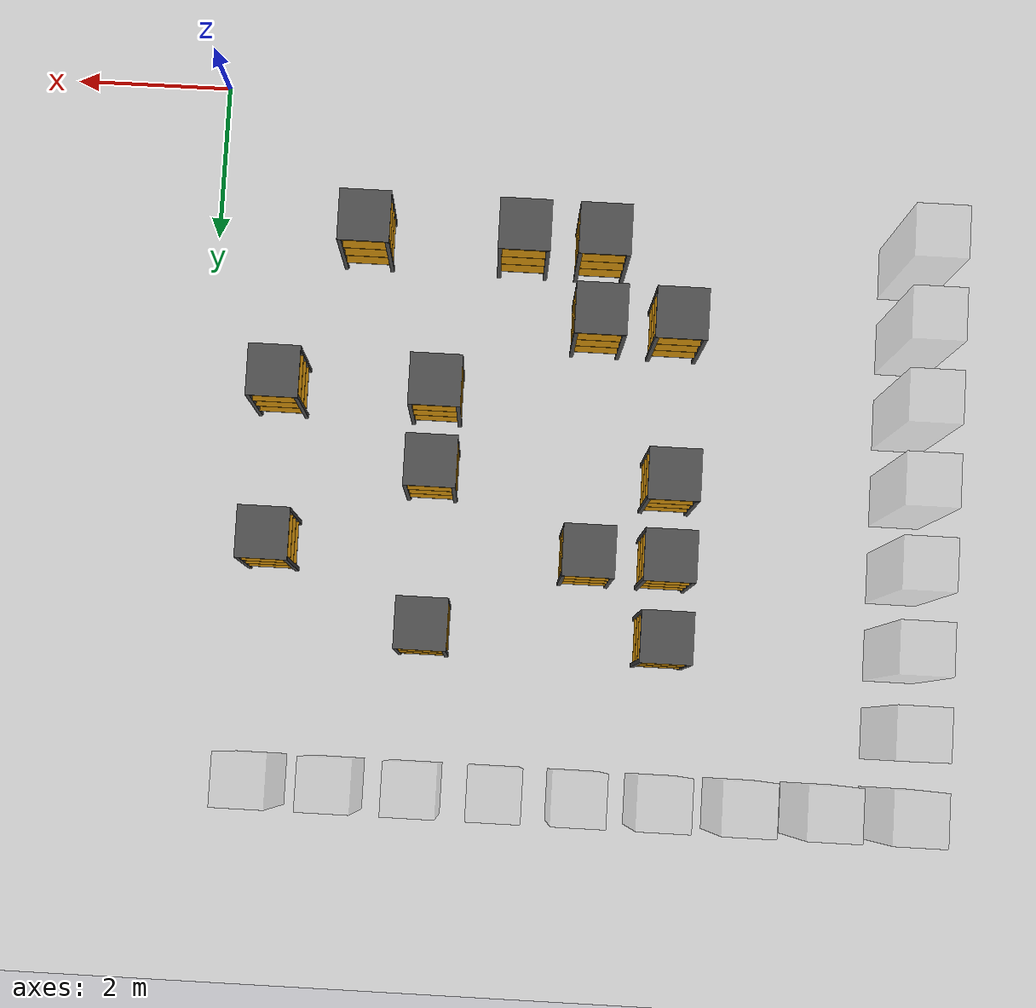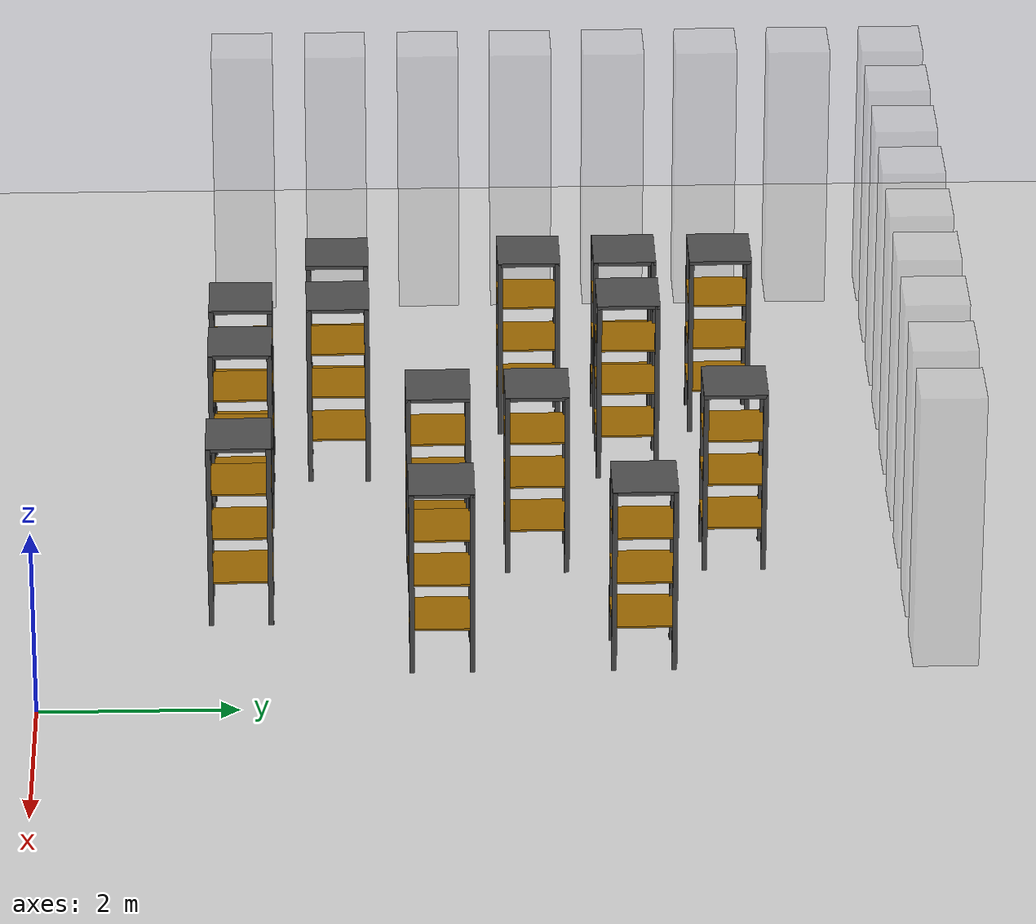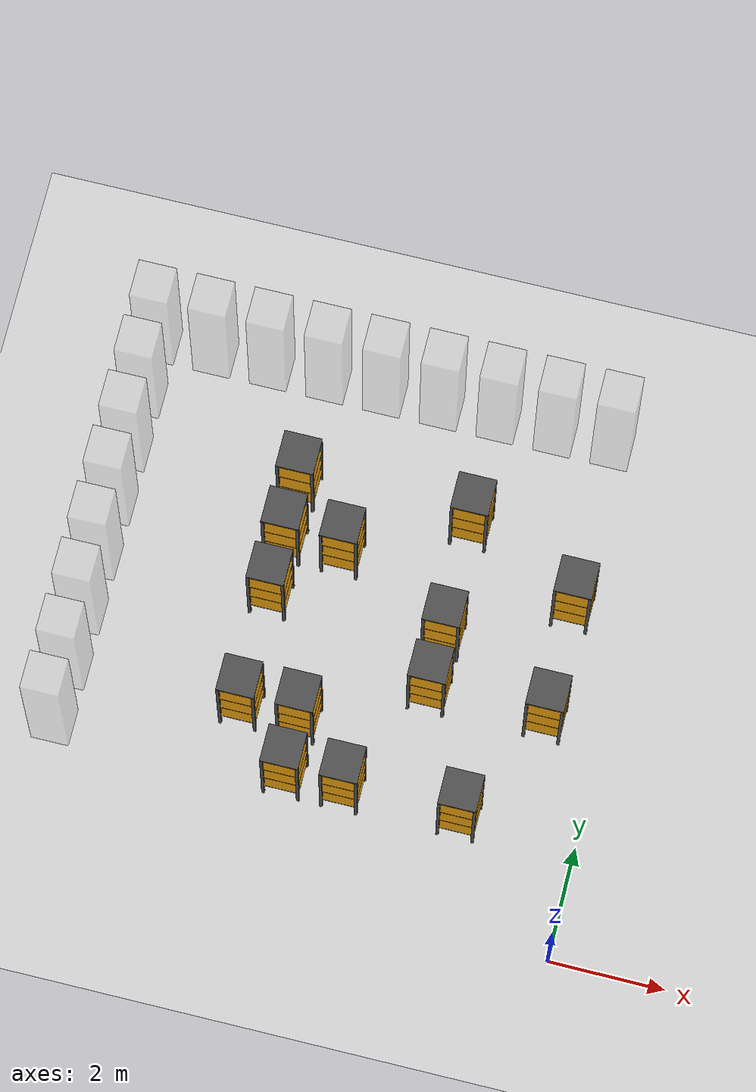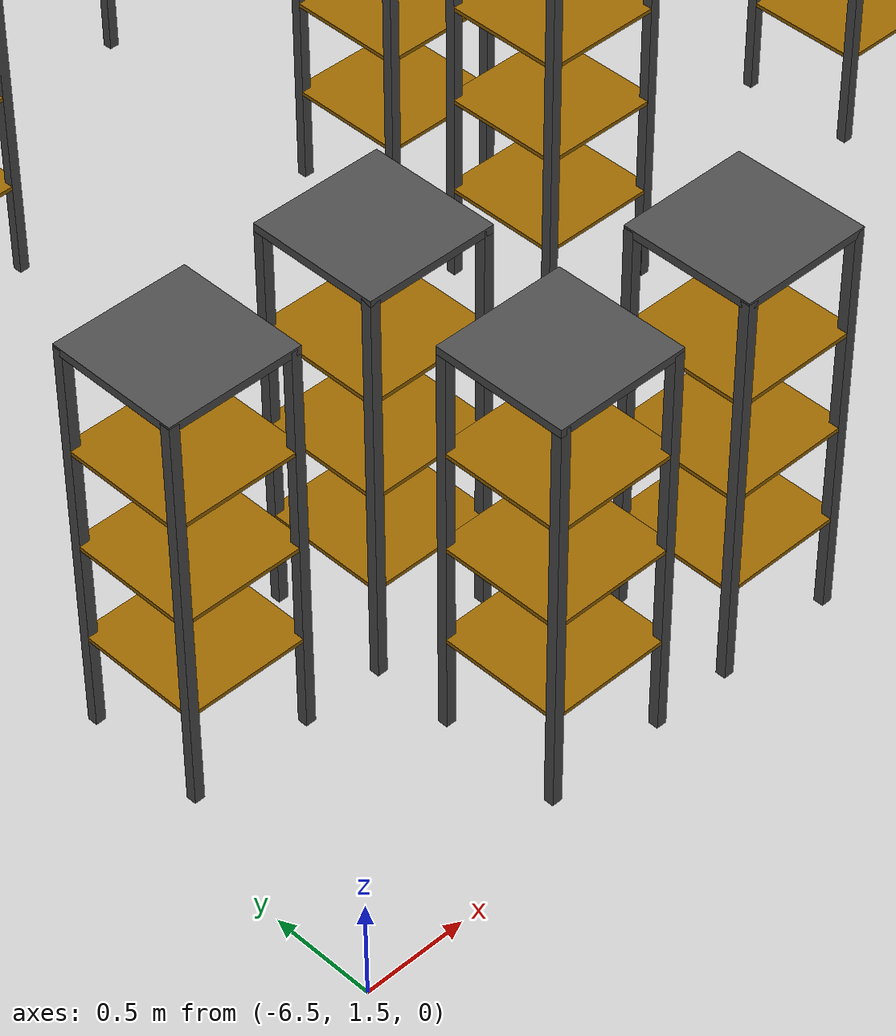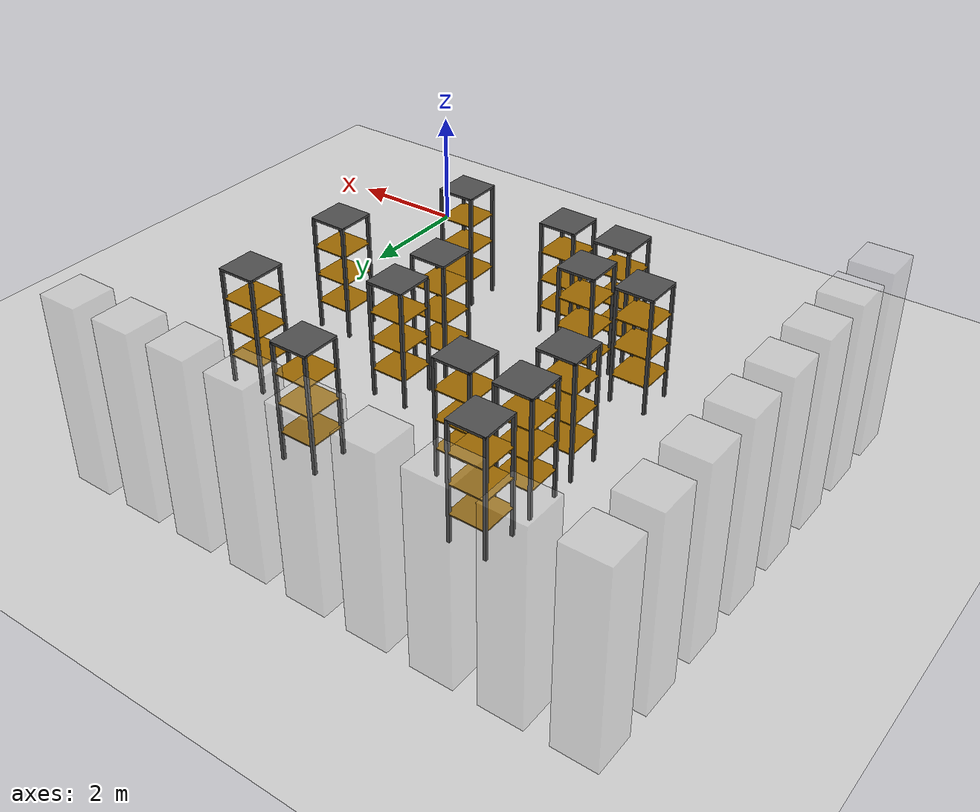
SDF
<sdf version="1.6">
 <world name="default">
  <model name="ground_plane">
   <static>1</static>
   <link name="link">
    <collision name="collision">
     <geometry><plane><normal>0 0 1</normal><size>50 50</size></plane></geometry>
     <surface><friction><ode><mu>100</mu><mu2>50</mu2></ode></friction></surface>
    </collision>
    <visual name="visual">
     <cast_shadows>0</cast_shadows>
     <geometry><plane><normal>0 0 1</normal><size>100 100</size></plane></geometry>
     <material>
      <script><uri>file://media/materials/scripts/gazebo.material</uri><name>Gazebo/Grey</name></script>
     </material>
    </visual>
    <velocity_decay><linear>0</linear><angular>0</angular></velocity_decay>
   </link>
  </model>
  <model name="pole_11_0">
   <static>1</static>
   <link name="main_block">
    <pose>0 0 1.5 0 -0 0</pose>
    <collision name="collision"><geometry><box><size>0.65 0.65 3</size></box></geometry></collision>
    <visual name="visual">
     <geometry><box><size>0.65 0.65 3</size></box></geometry>
     <material><ambient>0.5 0.5 0.5 0.25</ambient><diffuse>0.75 0.75 0.75 0.25</diffuse></material>
    </visual>
   </link>
   <pose>-9 2 0 0 -0 0</pose>
  </model>
  <model name="warehouse_shelf_11_4">
   <static>1</static>
   <link name="main_block">
    <pose>0 0 1.25 0 -0 0</pose>
    <collision name="collision"><geometry><box><size>0.65 0.65 1.5</size></box></geometry></collision>
   </link>
   <link name="leg_1">
    <pose>0.3 0.3 1 0 -0 0</pose>
    <collision name="collision"><geometry><box><size>0.05 0.05 2</size></box></geometry></collision>
    <visual name="visual">
     <geometry><box><size>0.05 0.05 2</size></box></geometry>
     <material><ambient>0.2 0.2 0.2 1</ambient><diffuse>0.3 0.3 0.3 1</diffuse></material>
    </visual>
   </link>
   <link name="leg_2">
    <pose>-0.3 0.3 1 0 -0 0</pose>
    <collision name="collision"><geometry><box><size>0.05 0.05 2</size></box></geometry></collision>
    <visual name="visual">
     <geometry><box><size>0.05 0.05 2</size></box></geometry>
     <material><ambient>0.2 0.2 0.2 1</ambient><diffuse>0.3 0.3 0.3 1</diffuse></material>
    </visual>
   </link>
   <link name="leg_3">
    <pose>-0.3 -0.3 1 0 -0 0</pose>
    <collision name="collision"><geometry><box><size>0.05 0.05 2</size></box></geometry></collision>
    <visual name="visual">
     <geometry><box><size>0.05 0.05 2</size></box></geometry>
     <material><ambient>0.2 0.2 0.2 1</ambient><diffuse>0.3 0.3 0.3 1</diffuse></material>
    </visual>
   </link>
   <link name="leg_4">
    <pose>0.3 -0.3 1 0 -0 0</pose>
    <collision name="collision"><geometry><box><size>0.05 0.05 2</size></box></geometry></collision>
    <visual name="visual">
     <geometry><box><size>0.05 0.05 2</size></box></geometry>
     <material><ambient>0.2 0.2 0.2 1</ambient><diffuse>0.3 0.3 0.3 1</diffuse></material>
    </visual>
   </link>
   <link name="shelf_0">
    <pose>0 0 0.49 0 -0 0</pose>
    <visual name="visual">
     <geometry><box><size>0.649 0.649 0.02</size></box></geometry>
     <material><ambient>0.2 0.05 0 1</ambient><diffuse>0.6 0.4 0 1</diffuse></material>
    </visual>
   </link>
   <link name="shelf_1">
    <pose>0 0 0.99 0 -0 0</pose>
    <visual name="visual">
     <geometry><box><size>0.649 0.649 0.02</size></box></geometry>
     <material><ambient>0.2 0.05 0 1</ambient><diffuse>0.6 0.4 0 1</diffuse></material>
    </visual>
   </link>
   <link name="shelf_2">
    <pose>0 0 1.49 0 -0 0</pose>
    <visual name="visual">
     <geometry><box><size>0.649 0.649 0.02</size></box></geometry>
     <material><ambient>0.2 0.05 0 1</ambient><diffuse>0.6 0.4 0 1</diffuse></material>
    </visual>
   </link>
   <link name="shelf_top">
    <pose>0 0 1.99 0 -0 0</pose>
    <visual name="visual">
     <geometry><box><size>0.65 0.65 0.04</size></box></geometry>
     <material><ambient>0.2 0.2 0.2 1</ambient><diffuse>0.3 0.3 0.3 1</diffuse></material>
    </visual>
   </link>
   <pose>-5 2 0 0 -0 0</pose>
  </model>
  <model name="warehouse_shelf_11_5">
   <static>1</static>
   <link name="main_block">
    <pose>0 0 1.25 0 -0 0</pose>
    <collision name="collision"><geometry><box><size>0.65 0.65 1.5</size></box></geometry></collision>
   </link>
   <link name="leg_1">
    <pose>0.3 0.3 1 0 -0 0</pose>
    <collision name="collision"><geometry><box><size>0.05 0.05 2</size></box></geometry></collision>
    <visual name="visual">
     <geometry><box><size>0.05 0.05 2</size></box></geometry>
     <material><ambient>0.2 0.2 0.2 1</ambient><diffuse>0.3 0.3 0.3 1</diffuse></material>
    </visual>
   </link>
   <link name="leg_2">
    <pose>-0.3 0.3 1 0 -0 0</pose>
    <collision name="collision"><geometry><box><size>0.05 0.05 2</size></box></geometry></collision>
    <visual name="visual">
     <geometry><box><size>0.05 0.05 2</size></box></geometry>
     <material><ambient>0.2 0.2 0.2 1</ambient><diffuse>0.3 0.3 0.3 1</diffuse></material>
    </visual>
   </link>
   <link name="leg_3">
    <pose>-0.3 -0.3 1 0 -0 0</pose>
    <collision name="collision"><geometry><box><size>0.05 0.05 2</size></box></geometry></collision>
    <visual name="visual">
     <geometry><box><size>0.05 0.05 2</size></box></geometry>
     <material><ambient>0.2 0.2 0.2 1</ambient><diffuse>0.3 0.3 0.3 1</diffuse></material>
    </visual>
   </link>
   <link name="leg_4">
    <pose>0.3 -0.3 1 0 -0 0</pose>
    <collision name="collision"><geometry><box><size>0.05 0.05 2</size></box></geometry></collision>
    <visual name="visual">
     <geometry><box><size>0.05 0.05 2</size></box></geometry>
     <material><ambient>0.2 0.2 0.2 1</ambient><diffuse>0.3 0.3 0.3 1</diffuse></material>
    </visual>
   </link>
   <link name="shelf_0">
    <pose>0 0 0.49 0 -0 0</pose>
    <visual name="visual">
     <geometry><box><size>0.649 0.649 0.02</size></box></geometry>
     <material><ambient>0.2 0.05 0 1</ambient><diffuse>0.6 0.4 0 1</diffuse></material>
    </visual>
   </link>
   <link name="shelf_1">
    <pose>0 0 0.99 0 -0 0</pose>
    <visual name="visual">
     <geometry><box><size>0.649 0.649 0.02</size></box></geometry>
     <material><ambient>0.2 0.05 0 1</ambient><diffuse>0.6 0.4 0 1</diffuse></material>
    </visual>
   </link>
   <link name="shelf_2">
    <pose>0 0 1.49 0 -0 0</pose>
    <visual name="visual">
     <geometry><box><size>0.649 0.649 0.02</size></box></geometry>
     <material><ambient>0.2 0.05 0 1</ambient><diffuse>0.6 0.4 0 1</diffuse></material>
    </visual>
   </link>
   <link name="shelf_top">
    <pose>0 0 1.99 0 -0 0</pose>
    <visual name="visual">
     <geometry><box><size>0.65 0.65 0.04</size></box></geometry>
     <material><ambient>0.2 0.2 0.2 1</ambient><diffuse>0.3 0.3 0.3 1</diffuse></material>
    </visual>
   </link>
   <pose>-4 2 0 0 -0 0</pose>
  </model>
  <model name="warehouse_shelf_11_7">
   <static>1</static>
   <link name="main_block">
    <pose>0 0 1.25 0 -0 0</pose>
    <collision name="collision"><geometry><box><size>0.65 0.65 1.5</size></box></geometry></collision>
   </link>
   <link name="leg_1">
    <pose>0.3 0.3 1 0 -0 0</pose>
    <collision name="collision"><geometry><box><size>0.05 0.05 2</size></box></geometry></collision>
    <visual name="visual">
     <geometry><box><size>0.05 0.05 2</size></box></geometry>
     <material><ambient>0.2 0.2 0.2 1</ambient><diffuse>0.3 0.3 0.3 1</diffuse></material>
    </visual>
   </link>
   <link name="leg_2">
    <pose>-0.3 0.3 1 0 -0 0</pose>
    <collision name="collision"><geometry><box><size>0.05 0.05 2</size></box></geometry></collision>
    <visual name="visual">
     <geometry><box><size>0.05 0.05 2</size></box></geometry>
     <material><ambient>0.2 0.2 0.2 1</ambient><diffuse>0.3 0.3 0.3 1</diffuse></material>
    </visual>
   </link>
   <link name="leg_3">
    <pose>-0.3 -0.3 1 0 -0 0</pose>
    <collision name="collision"><geometry><box><size>0.05 0.05 2</size></box></geometry></collision>
    <visual name="visual">
     <geometry><box><size>0.05 0.05 2</size></box></geometry>
     <material><ambient>0.2 0.2 0.2 1</ambient><diffuse>0.3 0.3 0.3 1</diffuse></material>
    </visual>
   </link>
   <link name="leg_4">
    <pose>0.3 -0.3 1 0 -0 0</pose>
    <collision name="collision"><geometry><box><size>0.05 0.05 2</size></box></geometry></collision>
    <visual name="visual">
     <geometry><box><size>0.05 0.05 2</size></box></geometry>
     <material><ambient>0.2 0.2 0.2 1</ambient><diffuse>0.3 0.3 0.3 1</diffuse></material>
    </visual>
   </link>
   <link name="shelf_0">
    <pose>0 0 0.49 0 -0 0</pose>
    <visual name="visual">
     <geometry><box><size>0.649 0.649 0.02</size></box></geometry>
     <material><ambient>0.2 0.05 0 1</ambient><diffuse>0.6 0.4 0 1</diffuse></material>
    </visual>
   </link>
   <link name="shelf_1">
    <pose>0 0 0.99 0 -0 0</pose>
    <visual name="visual">
     <geometry><box><size>0.649 0.649 0.02</size></box></geometry>
     <material><ambient>0.2 0.05 0 1</ambient><diffuse>0.6 0.4 0 1</diffuse></material>
    </visual>
   </link>
   <link name="shelf_2">
    <pose>0 0 1.49 0 -0 0</pose>
    <visual name="visual">
     <geometry><box><size>0.649 0.649 0.02</size></box></geometry>
     <material><ambient>0.2 0.05 0 1</ambient><diffuse>0.6 0.4 0 1</diffuse></material>
    </visual>
   </link>
   <link name="shelf_top">
    <pose>0 0 1.99 0 -0 0</pose>
    <visual name="visual">
     <geometry><box><size>0.65 0.65 0.04</size></box></geometry>
     <material><ambient>0.2 0.2 0.2 1</ambient><diffuse>0.3 0.3 0.3 1</diffuse></material>
    </visual>
   </link>
   <pose>-2 2 0 0 -0 0</pose>
  </model>
  <model name="pole_12_0">
   <static>1</static>
   <link name="main_block">
    <pose>0 0 1.5 0 -0 0</pose>
    <collision name="collision"><geometry><box><size>0.65 0.65 3</size></box></geometry></collision>
    <visual name="visual">
     <geometry><box><size>0.65 0.65 3</size></box></geometry>
     <material><ambient>0.5 0.5 0.5 0.25</ambient><diffuse>0.75 0.75 0.75 0.25</diffuse></material>
    </visual>
   </link>
   <pose>-9 3 0 0 -0 0</pose>
  </model>
  <model name="warehouse_shelf_12_3">
   <static>1</static>
   <link name="main_block">
    <pose>0 0 1.25 0 -0 0</pose>
    <collision name="collision"><geometry><box><size>0.65 0.65 1.5</size></box></geometry></collision>
   </link>
   <link name="leg_1">
    <pose>0.3 0.3 1 0 -0 0</pose>
    <collision name="collision"><geometry><box><size>0.05 0.05 2</size></box></geometry></collision>
    <visual name="visual">
     <geometry><box><size>0.05 0.05 2</size></box></geometry>
     <material><ambient>0.2 0.2 0.2 1</ambient><diffuse>0.3 0.3 0.3 1</diffuse></material>
    </visual>
   </link>
   <link name="leg_2">
    <pose>-0.3 0.3 1 0 -0 0</pose>
    <collision name="collision"><geometry><box><size>0.05 0.05 2</size></box></geometry></collision>
    <visual name="visual">
     <geometry><box><size>0.05 0.05 2</size></box></geometry>
     <material><ambient>0.2 0.2 0.2 1</ambient><diffuse>0.3 0.3 0.3 1</diffuse></material>
    </visual>
   </link>
   <link name="leg_3">
    <pose>-0.3 -0.3 1 0 -0 0</pose>
    <collision name="collision"><geometry><box><size>0.05 0.05 2</size></box></geometry></collision>
    <visual name="visual">
     <geometry><box><size>0.05 0.05 2</size></box></geometry>
     <material><ambient>0.2 0.2 0.2 1</ambient><diffuse>0.3 0.3 0.3 1</diffuse></material>
    </visual>
   </link>
   <link name="leg_4">
    <pose>0.3 -0.3 1 0 -0 0</pose>
    <collision name="collision"><geometry><box><size>0.05 0.05 2</size></box></geometry></collision>
    <visual name="visual">
     <geometry><box><size>0.05 0.05 2</size></box></geometry>
     <material><ambient>0.2 0.2 0.2 1</ambient><diffuse>0.3 0.3 0.3 1</diffuse></material>
    </visual>
   </link>
   <link name="shelf_0">
    <pose>0 0 0.49 0 -0 0</pose>
    <visual name="visual">
     <geometry><box><size>0.649 0.649 0.02</size></box></geometry>
     <material><ambient>0.2 0.05 0 1</ambient><diffuse>0.6 0.4 0 1</diffuse></material>
    </visual>
   </link>
   <link name="shelf_1">
    <pose>0 0 0.99 0 -0 0</pose>
    <visual name="visual">
     <geometry><box><size>0.649 0.649 0.02</size></box></geometry>
     <material><ambient>0.2 0.05 0 1</ambient><diffuse>0.6 0.4 0 1</diffuse></material>
    </visual>
   </link>
   <link name="shelf_2">
    <pose>0 0 1.49 0 -0 0</pose>
    <visual name="visual">
     <geometry><box><size>0.649 0.649 0.02</size></box></geometry>
     <material><ambient>0.2 0.05 0 1</ambient><diffuse>0.6 0.4 0 1</diffuse></material>
    </visual>
   </link>
   <link name="shelf_top">
    <pose>0 0 1.99 0 -0 0</pose>
    <visual name="visual">
     <geometry><box><size>0.65 0.65 0.04</size></box></geometry>
     <material><ambient>0.2 0.2 0.2 1</ambient><diffuse>0.3 0.3 0.3 1</diffuse></material>
    </visual>
   </link>
   <pose>-6 3 0 0 -0 0</pose>
  </model>
  <model name="warehouse_shelf_12_4">
   <static>1</static>
   <link name="main_block">
    <pose>0 0 1.25 0 -0 0</pose>
    <collision name="collision"><geometry><box><size>0.65 0.65 1.5</size></box></geometry></collision>
   </link>
   <link name="leg_1">
    <pose>0.3 0.3 1 0 -0 0</pose>
    <collision name="collision"><geometry><box><size>0.05 0.05 2</size></box></geometry></collision>
    <visual name="visual">
     <geometry><box><size>0.05 0.05 2</size></box></geometry>
     <material><ambient>0.2 0.2 0.2 1</ambient><diffuse>0.3 0.3 0.3 1</diffuse></material>
    </visual>
   </link>
   <link name="leg_2">
    <pose>-0.3 0.3 1 0 -0 0</pose>
    <collision name="collision"><geometry><box><size>0.05 0.05 2</size></box></geometry></collision>
    <visual name="visual">
     <geometry><box><size>0.05 0.05 2</size></box></geometry>
     <material><ambient>0.2 0.2 0.2 1</ambient><diffuse>0.3 0.3 0.3 1</diffuse></material>
    </visual>
   </link>
   <link name="leg_3">
    <pose>-0.3 -0.3 1 0 -0 0</pose>
    <collision name="collision"><geometry><box><size>0.05 0.05 2</size></box></geometry></collision>
    <visual name="visual">
     <geometry><box><size>0.05 0.05 2</size></box></geometry>
     <material><ambient>0.2 0.2 0.2 1</ambient><diffuse>0.3 0.3 0.3 1</diffuse></material>
    </visual>
   </link>
   <link name="leg_4">
    <pose>0.3 -0.3 1 0 -0 0</pose>
    <collision name="collision"><geometry><box><size>0.05 0.05 2</size></box></geometry></collision>
    <visual name="visual">
     <geometry><box><size>0.05 0.05 2</size></box></geometry>
     <material><ambient>0.2 0.2 0.2 1</ambient><diffuse>0.3 0.3 0.3 1</diffuse></material>
    </visual>
   </link>
   <link name="shelf_0">
    <pose>0 0 0.49 0 -0 0</pose>
    <visual name="visual">
     <geometry><box><size>0.649 0.649 0.02</size></box></geometry>
     <material><ambient>0.2 0.05 0 1</ambient><diffuse>0.6 0.4 0 1</diffuse></material>
    </visual>
   </link>
   <link name="shelf_1">
    <pose>0 0 0.99 0 -0 0</pose>
    <visual name="visual">
     <geometry><box><size>0.649 0.649 0.02</size></box></geometry>
     <material><ambient>0.2 0.05 0 1</ambient><diffuse>0.6 0.4 0 1</diffuse></material>
    </visual>
   </link>
   <link name="shelf_2">
    <pose>0 0 1.49 0 -0 0</pose>
    <visual name="visual">
     <geometry><box><size>0.649 0.649 0.02</size></box></geometry>
     <material><ambient>0.2 0.05 0 1</ambient><diffuse>0.6 0.4 0 1</diffuse></material>
    </visual>
   </link>
   <link name="shelf_top">
    <pose>0 0 1.99 0 -0 0</pose>
    <visual name="visual">
     <geometry><box><size>0.65 0.65 0.04</size></box></geometry>
     <material><ambient>0.2 0.2 0.2 1</ambient><diffuse>0.3 0.3 0.3 1</diffuse></material>
    </visual>
   </link>
   <pose>-5 3 0 0 -0 0</pose>
  </model>
  <model name="pole_13_0">
   <static>1</static>
   <link name="main_block">
    <pose>0 0 1.5 0 -0 0</pose>
    <collision name="collision"><geometry><box><size>0.65 0.65 3</size></box></geometry></collision>
    <visual name="visual">
     <geometry><box><size>0.65 0.65 3</size></box></geometry>
     <material><ambient>0.5 0.5 0.5 0.25</ambient><diffuse>0.75 0.75 0.75 0.25</diffuse></material>
    </visual>
   </link>
   <pose>-9 4 0 0 -0 0</pose>
  </model>
  <model name="warehouse_shelf_13_6">
   <static>1</static>
   <link name="main_block">
    <pose>0 0 1.25 0 -0 0</pose>
    <collision name="collision"><geometry><box><size>0.65 0.65 1.5</size></box></geometry></collision>
   </link>
   <link name="leg_1">
    <pose>0.3 0.3 1 0 -0 0</pose>
    <collision name="collision"><geometry><box><size>0.05 0.05 2</size></box></geometry></collision>
    <visual name="visual">
     <geometry><box><size>0.05 0.05 2</size></box></geometry>
     <material><ambient>0.2 0.2 0.2 1</ambient><diffuse>0.3 0.3 0.3 1</diffuse></material>
    </visual>
   </link>
   <link name="leg_2">
    <pose>-0.3 0.3 1 0 -0 0</pose>
    <collision name="collision"><geometry><box><size>0.05 0.05 2</size></box></geometry></collision>
    <visual name="visual">
     <geometry><box><size>0.05 0.05 2</size></box></geometry>
     <material><ambient>0.2 0.2 0.2 1</ambient><diffuse>0.3 0.3 0.3 1</diffuse></material>
    </visual>
   </link>
   <link name="leg_3">
    <pose>-0.3 -0.3 1 0 -0 0</pose>
    <collision name="collision"><geometry><box><size>0.05 0.05 2</size></box></geometry></collision>
    <visual name="visual">
     <geometry><box><size>0.05 0.05 2</size></box></geometry>
     <material><ambient>0.2 0.2 0.2 1</ambient><diffuse>0.3 0.3 0.3 1</diffuse></material>
    </visual>
   </link>
   <link name="leg_4">
    <pose>0.3 -0.3 1 0 -0 0</pose>
    <collision name="collision"><geometry><box><size>0.05 0.05 2</size></box></geometry></collision>
    <visual name="visual">
     <geometry><box><size>0.05 0.05 2</size></box></geometry>
     <material><ambient>0.2 0.2 0.2 1</ambient><diffuse>0.3 0.3 0.3 1</diffuse></material>
    </visual>
   </link>
   <link name="shelf_0">
    <pose>0 0 0.49 0 -0 0</pose>
    <visual name="visual">
     <geometry><box><size>0.649 0.649 0.02</size></box></geometry>
     <material><ambient>0.2 0.05 0 1</ambient><diffuse>0.6 0.4 0 1</diffuse></material>
    </visual>
   </link>
   <link name="shelf_1">
    <pose>0 0 0.99 0 -0 0</pose>
    <visual name="visual">
     <geometry><box><size>0.649 0.649 0.02</size></box></geometry>
     <material><ambient>0.2 0.05 0 1</ambient><diffuse>0.6 0.4 0 1</diffuse></material>
    </visual>
   </link>
   <link name="shelf_2">
    <pose>0 0 1.49 0 -0 0</pose>
    <visual name="visual">
     <geometry><box><size>0.649 0.649 0.02</size></box></geometry>
     <material><ambient>0.2 0.05 0 1</ambient><diffuse>0.6 0.4 0 1</diffuse></material>
    </visual>
   </link>
   <link name="shelf_top">
    <pose>0 0 1.99 0 -0 0</pose>
    <visual name="visual">
     <geometry><box><size>0.65 0.65 0.04</size></box></geometry>
     <material><ambient>0.2 0.2 0.2 1</ambient><diffuse>0.3 0.3 0.3 1</diffuse></material>
    </visual>
   </link>
   <pose>-3 4 0 0 -0 0</pose>
  </model>
  <model name="warehouse_shelf_13_8">
   <static>1</static>
   <link name="main_block">
    <pose>0 0 1.25 0 -0 0</pose>
    <collision name="collision"><geometry><box><size>0.65 0.65 1.5</size></box></geometry></collision>
   </link>
   <link name="leg_1">
    <pose>0.3 0.3 1 0 -0 0</pose>
    <collision name="collision"><geometry><box><size>0.05 0.05 2</size></box></geometry></collision>
    <visual name="visual">
     <geometry><box><size>0.05 0.05 2</size></box></geometry>
     <material><ambient>0.2 0.2 0.2 1</ambient><diffuse>0.3 0.3 0.3 1</diffuse></material>
    </visual>
   </link>
   <link name="leg_2">
    <pose>-0.3 0.3 1 0 -0 0</pose>
    <collision name="collision"><geometry><box><size>0.05 0.05 2</size></box></geometry></collision>
    <visual name="visual">
     <geometry><box><size>0.05 0.05 2</size></box></geometry>
     <material><ambient>0.2 0.2 0.2 1</ambient><diffuse>0.3 0.3 0.3 1</diffuse></material>
    </visual>
   </link>
   <link name="leg_3">
    <pose>-0.3 -0.3 1 0 -0 0</pose>
    <collision name="collision"><geometry><box><size>0.05 0.05 2</size></box></geometry></collision>
    <visual name="visual">
     <geometry><box><size>0.05 0.05 2</size></box></geometry>
     <material><ambient>0.2 0.2 0.2 1</ambient><diffuse>0.3 0.3 0.3 1</diffuse></material>
    </visual>
   </link>
   <link name="leg_4">
    <pose>0.3 -0.3 1 0 -0 0</pose>
    <collision name="collision"><geometry><box><size>0.05 0.05 2</size></box></geometry></collision>
    <visual name="visual">
     <geometry><box><size>0.05 0.05 2</size></box></geometry>
     <material><ambient>0.2 0.2 0.2 1</ambient><diffuse>0.3 0.3 0.3 1</diffuse></material>
    </visual>
   </link>
   <link name="shelf_0">
    <pose>0 0 0.49 0 -0 0</pose>
    <visual name="visual">
     <geometry><box><size>0.649 0.649 0.02</size></box></geometry>
     <material><ambient>0.2 0.05 0 1</ambient><diffuse>0.6 0.4 0 1</diffuse></material>
    </visual>
   </link>
   <link name="shelf_1">
    <pose>0 0 0.99 0 -0 0</pose>
    <visual name="visual">
     <geometry><box><size>0.649 0.649 0.02</size></box></geometry>
     <material><ambient>0.2 0.05 0 1</ambient><diffuse>0.6 0.4 0 1</diffuse></material>
    </visual>
   </link>
   <link name="shelf_2">
    <pose>0 0 1.49 0 -0 0</pose>
    <visual name="visual">
     <geometry><box><size>0.649 0.649 0.02</size></box></geometry>
     <material><ambient>0.2 0.05 0 1</ambient><diffuse>0.6 0.4 0 1</diffuse></material>
    </visual>
   </link>
   <link name="shelf_top">
    <pose>0 0 1.99 0 -0 0</pose>
    <visual name="visual">
     <geometry><box><size>0.65 0.65 0.04</size></box></geometry>
     <material><ambient>0.2 0.2 0.2 1</ambient><diffuse>0.3 0.3 0.3 1</diffuse></material>
    </visual>
   </link>
   <pose>-1 4 0 0 -0 0</pose>
  </model>
  <model name="pole_14_0">
   <static>1</static>
   <link name="main_block">
    <pose>0 0 1.5 0 -0 0</pose>
    <collision name="collision"><geometry><box><size>0.65 0.65 3</size></box></geometry></collision>
    <visual name="visual">
     <geometry><box><size>0.65 0.65 3</size></box></geometry>
     <material><ambient>0.5 0.5 0.5 0.25</ambient><diffuse>0.75 0.75 0.75 0.25</diffuse></material>
    </visual>
   </link>
   <pose>-9 5 0 0 -0 0</pose>
  </model>
  <model name="warehouse_shelf_14_3">
   <static>1</static>
   <link name="main_block">
    <pose>0 0 1.25 0 -0 0</pose>
    <collision name="collision"><geometry><box><size>0.65 0.65 1.5</size></box></geometry></collision>
   </link>
   <link name="leg_1">
    <pose>0.3 0.3 1 0 -0 0</pose>
    <collision name="collision"><geometry><box><size>0.05 0.05 2</size></box></geometry></collision>
    <visual name="visual">
     <geometry><box><size>0.05 0.05 2</size></box></geometry>
     <material><ambient>0.2 0.2 0.2 1</ambient><diffuse>0.3 0.3 0.3 1</diffuse></material>
    </visual>
   </link>
   <link name="leg_2">
    <pose>-0.3 0.3 1 0 -0 0</pose>
    <collision name="collision"><geometry><box><size>0.05 0.05 2</size></box></geometry></collision>
    <visual name="visual">
     <geometry><box><size>0.05 0.05 2</size></box></geometry>
     <material><ambient>0.2 0.2 0.2 1</ambient><diffuse>0.3 0.3 0.3 1</diffuse></material>
    </visual>
   </link>
   <link name="leg_3">
    <pose>-0.3 -0.3 1 0 -0 0</pose>
    <collision name="collision"><geometry><box><size>0.05 0.05 2</size></box></geometry></collision>
    <visual name="visual">
     <geometry><box><size>0.05 0.05 2</size></box></geometry>
     <material><ambient>0.2 0.2 0.2 1</ambient><diffuse>0.3 0.3 0.3 1</diffuse></material>
    </visual>
   </link>
   <link name="leg_4">
    <pose>0.3 -0.3 1 0 -0 0</pose>
    <collision name="collision"><geometry><box><size>0.05 0.05 2</size></box></geometry></collision>
    <visual name="visual">
     <geometry><box><size>0.05 0.05 2</size></box></geometry>
     <material><ambient>0.2 0.2 0.2 1</ambient><diffuse>0.3 0.3 0.3 1</diffuse></material>
    </visual>
   </link>
   <link name="shelf_0">
    <pose>0 0 0.49 0 -0 0</pose>
    <visual name="visual">
     <geometry><box><size>0.649 0.649 0.02</size></box></geometry>
     <material><ambient>0.2 0.05 0 1</ambient><diffuse>0.6 0.4 0 1</diffuse></material>
    </visual>
   </link>
   <link name="shelf_1">
    <pose>0 0 0.99 0 -0 0</pose>
    <visual name="visual">
     <geometry><box><size>0.649 0.649 0.02</size></box></geometry>
     <material><ambient>0.2 0.05 0 1</ambient><diffuse>0.6 0.4 0 1</diffuse></material>
    </visual>
   </link>
   <link name="shelf_2">
    <pose>0 0 1.49 0 -0 0</pose>
    <visual name="visual">
     <geometry><box><size>0.649 0.649 0.02</size></box></geometry>
     <material><ambient>0.2 0.05 0 1</ambient><diffuse>0.6 0.4 0 1</diffuse></material>
    </visual>
   </link>
   <link name="shelf_top">
    <pose>0 0 1.99 0 -0 0</pose>
    <visual name="visual">
     <geometry><box><size>0.65 0.65 0.04</size></box></geometry>
     <material><ambient>0.2 0.2 0.2 1</ambient><diffuse>0.3 0.3 0.3 1</diffuse></material>
    </visual>
   </link>
   <pose>-6 5 0 0 -0 0</pose>
  </model>
  <model name="warehouse_shelf_14_6">
   <static>1</static>
   <link name="main_block">
    <pose>0 0 1.25 0 -0 0</pose>
    <collision name="collision"><geometry><box><size>0.65 0.65 1.5</size></box></geometry></collision>
   </link>
   <link name="leg_1">
    <pose>0.3 0.3 1 0 -0 0</pose>
    <collision name="collision"><geometry><box><size>0.05 0.05 2</size></box></geometry></collision>
    <visual name="visual">
     <geometry><box><size>0.05 0.05 2</size></box></geometry>
     <material><ambient>0.2 0.2 0.2 1</ambient><diffuse>0.3 0.3 0.3 1</diffuse></material>
    </visual>
   </link>
   <link name="leg_2">
    <pose>-0.3 0.3 1 0 -0 0</pose>
    <collision name="collision"><geometry><box><size>0.05 0.05 2</size></box></geometry></collision>
    <visual name="visual">
     <geometry><box><size>0.05 0.05 2</size></box></geometry>
     <material><ambient>0.2 0.2 0.2 1</ambient><diffuse>0.3 0.3 0.3 1</diffuse></material>
    </visual>
   </link>
   <link name="leg_3">
    <pose>-0.3 -0.3 1 0 -0 0</pose>
    <collision name="collision"><geometry><box><size>0.05 0.05 2</size></box></geometry></collision>
    <visual name="visual">
     <geometry><box><size>0.05 0.05 2</size></box></geometry>
     <material><ambient>0.2 0.2 0.2 1</ambient><diffuse>0.3 0.3 0.3 1</diffuse></material>
    </visual>
   </link>
   <link name="leg_4">
    <pose>0.3 -0.3 1 0 -0 0</pose>
    <collision name="collision"><geometry><box><size>0.05 0.05 2</size></box></geometry></collision>
    <visual name="visual">
     <geometry><box><size>0.05 0.05 2</size></box></geometry>
     <material><ambient>0.2 0.2 0.2 1</ambient><diffuse>0.3 0.3 0.3 1</diffuse></material>
    </visual>
   </link>
   <link name="shelf_0">
    <pose>0 0 0.49 0 -0 0</pose>
    <visual name="visual">
     <geometry><box><size>0.649 0.649 0.02</size></box></geometry>
     <material><ambient>0.2 0.05 0 1</ambient><diffuse>0.6 0.4 0 1</diffuse></material>
    </visual>
   </link>
   <link name="shelf_1">
    <pose>0 0 0.99 0 -0 0</pose>
    <visual name="visual">
     <geometry><box><size>0.649 0.649 0.02</size></box></geometry>
     <material><ambient>0.2 0.05 0 1</ambient><diffuse>0.6 0.4 0 1</diffuse></material>
    </visual>
   </link>
   <link name="shelf_2">
    <pose>0 0 1.49 0 -0 0</pose>
    <visual name="visual">
     <geometry><box><size>0.649 0.649 0.02</size></box></geometry>
     <material><ambient>0.2 0.05 0 1</ambient><diffuse>0.6 0.4 0 1</diffuse></material>
    </visual>
   </link>
   <link name="shelf_top">
    <pose>0 0 1.99 0 -0 0</pose>
    <visual name="visual">
     <geometry><box><size>0.65 0.65 0.04</size></box></geometry>
     <material><ambient>0.2 0.2 0.2 1</ambient><diffuse>0.3 0.3 0.3 1</diffuse></material>
    </visual>
   </link>
   <pose>-3 5 0 0 -0 0</pose>
  </model>
  <model name="pole_15_0">
   <static>1</static>
   <link name="main_block">
    <pose>0 0 1.5 0 -0 0</pose>
    <collision name="collision"><geometry><box><size>0.65 0.65 3</size></box></geometry></collision>
    <visual name="visual">
     <geometry><box><size>0.65 0.65 3</size></box></geometry>
     <material><ambient>0.5 0.5 0.5 0.25</ambient><diffuse>0.75 0.75 0.75 0.25</diffuse></material>
    </visual>
   </link>
   <pose>-9 6 0 0 -0 0</pose>
  </model>
  <model name="warehouse_shelf_15_3">
   <static>1</static>
   <link name="main_block">
    <pose>0 0 1.25 0 -0 0</pose>
    <collision name="collision"><geometry><box><size>0.65 0.65 1.5</size></box></geometry></collision>
   </link>
   <link name="leg_1">
    <pose>0.3 0.3 1 0 -0 0</pose>
    <collision name="collision"><geometry><box><size>0.05 0.05 2</size></box></geometry></collision>
    <visual name="visual">
     <geometry><box><size>0.05 0.05 2</size></box></geometry>
     <material><ambient>0.2 0.2 0.2 1</ambient><diffuse>0.3 0.3 0.3 1</diffuse></material>
    </visual>
   </link>
   <link name="leg_2">
    <pose>-0.3 0.3 1 0 -0 0</pose>
    <collision name="collision"><geometry><box><size>0.05 0.05 2</size></box></geometry></collision>
    <visual name="visual">
     <geometry><box><size>0.05 0.05 2</size></box></geometry>
     <material><ambient>0.2 0.2 0.2 1</ambient><diffuse>0.3 0.3 0.3 1</diffuse></material>
    </visual>
   </link>
   <link name="leg_3">
    <pose>-0.3 -0.3 1 0 -0 0</pose>
    <collision name="collision"><geometry><box><size>0.05 0.05 2</size></box></geometry></collision>
    <visual name="visual">
     <geometry><box><size>0.05 0.05 2</size></box></geometry>
     <material><ambient>0.2 0.2 0.2 1</ambient><diffuse>0.3 0.3 0.3 1</diffuse></material>
    </visual>
   </link>
   <link name="leg_4">
    <pose>0.3 -0.3 1 0 -0 0</pose>
    <collision name="collision"><geometry><box><size>0.05 0.05 2</size></box></geometry></collision>
    <visual name="visual">
     <geometry><box><size>0.05 0.05 2</size></box></geometry>
     <material><ambient>0.2 0.2 0.2 1</ambient><diffuse>0.3 0.3 0.3 1</diffuse></material>
    </visual>
   </link>
   <link name="shelf_0">
    <pose>0 0 0.49 0 -0 0</pose>
    <visual name="visual">
     <geometry><box><size>0.649 0.649 0.02</size></box></geometry>
     <material><ambient>0.2 0.05 0 1</ambient><diffuse>0.6 0.4 0 1</diffuse></material>
    </visual>
   </link>
   <link name="shelf_1">
    <pose>0 0 0.99 0 -0 0</pose>
    <visual name="visual">
     <geometry><box><size>0.649 0.649 0.02</size></box></geometry>
     <material><ambient>0.2 0.05 0 1</ambient><diffuse>0.6 0.4 0 1</diffuse></material>
    </visual>
   </link>
   <link name="shelf_2">
    <pose>0 0 1.49 0 -0 0</pose>
    <visual name="visual">
     <geometry><box><size>0.649 0.649 0.02</size></box></geometry>
     <material><ambient>0.2 0.05 0 1</ambient><diffuse>0.6 0.4 0 1</diffuse></material>
    </visual>
   </link>
   <link name="shelf_top">
    <pose>0 0 1.99 0 -0 0</pose>
    <visual name="visual">
     <geometry><box><size>0.65 0.65 0.04</size></box></geometry>
     <material><ambient>0.2 0.2 0.2 1</ambient><diffuse>0.3 0.3 0.3 1</diffuse></material>
    </visual>
   </link>
   <pose>-6 6 0 0 -0 0</pose>
  </model>
  <model name="warehouse_shelf_15_4">
   <static>1</static>
   <link name="main_block">
    <pose>0 0 1.25 0 -0 0</pose>
    <collision name="collision"><geometry><box><size>0.65 0.65 1.5</size></box></geometry></collision>
   </link>
   <link name="leg_1">
    <pose>0.3 0.3 1 0 -0 0</pose>
    <collision name="collision"><geometry><box><size>0.05 0.05 2</size></box></geometry></collision>
    <visual name="visual">
     <geometry><box><size>0.05 0.05 2</size></box></geometry>
     <material><ambient>0.2 0.2 0.2 1</ambient><diffuse>0.3 0.3 0.3 1</diffuse></material>
    </visual>
   </link>
   <link name="leg_2">
    <pose>-0.3 0.3 1 0 -0 0</pose>
    <collision name="collision"><geometry><box><size>0.05 0.05 2</size></box></geometry></collision>
    <visual name="visual">
     <geometry><box><size>0.05 0.05 2</size></box></geometry>
     <material><ambient>0.2 0.2 0.2 1</ambient><diffuse>0.3 0.3 0.3 1</diffuse></material>
    </visual>
   </link>
   <link name="leg_3">
    <pose>-0.3 -0.3 1 0 -0 0</pose>
    <collision name="collision"><geometry><box><size>0.05 0.05 2</size></box></geometry></collision>
    <visual name="visual">
     <geometry><box><size>0.05 0.05 2</size></box></geometry>
     <material><ambient>0.2 0.2 0.2 1</ambient><diffuse>0.3 0.3 0.3 1</diffuse></material>
    </visual>
   </link>
   <link name="leg_4">
    <pose>0.3 -0.3 1 0 -0 0</pose>
    <collision name="collision"><geometry><box><size>0.05 0.05 2</size></box></geometry></collision>
    <visual name="visual">
     <geometry><box><size>0.05 0.05 2</size></box></geometry>
     <material><ambient>0.2 0.2 0.2 1</ambient><diffuse>0.3 0.3 0.3 1</diffuse></material>
    </visual>
   </link>
   <link name="shelf_0">
    <pose>0 0 0.49 0 -0 0</pose>
    <visual name="visual">
     <geometry><box><size>0.649 0.649 0.02</size></box></geometry>
     <material><ambient>0.2 0.05 0 1</ambient><diffuse>0.6 0.4 0 1</diffuse></material>
    </visual>
   </link>
   <link name="shelf_1">
    <pose>0 0 0.99 0 -0 0</pose>
    <visual name="visual">
     <geometry><box><size>0.649 0.649 0.02</size></box></geometry>
     <material><ambient>0.2 0.05 0 1</ambient><diffuse>0.6 0.4 0 1</diffuse></material>
    </visual>
   </link>
   <link name="shelf_2">
    <pose>0 0 1.49 0 -0 0</pose>
    <visual name="visual">
     <geometry><box><size>0.649 0.649 0.02</size></box></geometry>
     <material><ambient>0.2 0.05 0 1</ambient><diffuse>0.6 0.4 0 1</diffuse></material>
    </visual>
   </link>
   <link name="shelf_top">
    <pose>0 0 1.99 0 -0 0</pose>
    <visual name="visual">
     <geometry><box><size>0.65 0.65 0.04</size></box></geometry>
     <material><ambient>0.2 0.2 0.2 1</ambient><diffuse>0.3 0.3 0.3 1</diffuse></material>
    </visual>
   </link>
   <pose>-5 6 0 0 -0 0</pose>
  </model>
  <model name="warehouse_shelf_15_8">
   <static>1</static>
   <link name="main_block">
    <pose>0 0 1.25 0 -0 0</pose>
    <collision name="collision"><geometry><box><size>0.65 0.65 1.5</size></box></geometry></collision>
   </link>
   <link name="leg_1">
    <pose>0.3 0.3 1 0 -0 0</pose>
    <collision name="collision"><geometry><box><size>0.05 0.05 2</size></box></geometry></collision>
    <visual name="visual">
     <geometry><box><size>0.05 0.05 2</size></box></geometry>
     <material><ambient>0.2 0.2 0.2 1</ambient><diffuse>0.3 0.3 0.3 1</diffuse></material>
    </visual>
   </link>
   <link name="leg_2">
    <pose>-0.3 0.3 1 0 -0 0</pose>
    <collision name="collision"><geometry><box><size>0.05 0.05 2</size></box></geometry></collision>
    <visual name="visual">
     <geometry><box><size>0.05 0.05 2</size></box></geometry>
     <material><ambient>0.2 0.2 0.2 1</ambient><diffuse>0.3 0.3 0.3 1</diffuse></material>
    </visual>
   </link>
   <link name="leg_3">
    <pose>-0.3 -0.3 1 0 -0 0</pose>
    <collision name="collision"><geometry><box><size>0.05 0.05 2</size></box></geometry></collision>
    <visual name="visual">
     <geometry><box><size>0.05 0.05 2</size></box></geometry>
     <material><ambient>0.2 0.2 0.2 1</ambient><diffuse>0.3 0.3 0.3 1</diffuse></material>
    </visual>
   </link>
   <link name="leg_4">
    <pose>0.3 -0.3 1 0 -0 0</pose>
    <collision name="collision"><geometry><box><size>0.05 0.05 2</size></box></geometry></collision>
    <visual name="visual">
     <geometry><box><size>0.05 0.05 2</size></box></geometry>
     <material><ambient>0.2 0.2 0.2 1</ambient><diffuse>0.3 0.3 0.3 1</diffuse></material>
    </visual>
   </link>
   <link name="shelf_0">
    <pose>0 0 0.49 0 -0 0</pose>
    <visual name="visual">
     <geometry><box><size>0.649 0.649 0.02</size></box></geometry>
     <material><ambient>0.2 0.05 0 1</ambient><diffuse>0.6 0.4 0 1</diffuse></material>
    </visual>
   </link>
   <link name="shelf_1">
    <pose>0 0 0.99 0 -0 0</pose>
    <visual name="visual">
     <geometry><box><size>0.649 0.649 0.02</size></box></geometry>
     <material><ambient>0.2 0.05 0 1</ambient><diffuse>0.6 0.4 0 1</diffuse></material>
    </visual>
   </link>
   <link name="shelf_2">
    <pose>0 0 1.49 0 -0 0</pose>
    <visual name="visual">
     <geometry><box><size>0.649 0.649 0.02</size></box></geometry>
     <material><ambient>0.2 0.05 0 1</ambient><diffuse>0.6 0.4 0 1</diffuse></material>
    </visual>
   </link>
   <link name="shelf_top">
    <pose>0 0 1.99 0 -0 0</pose>
    <visual name="visual">
     <geometry><box><size>0.65 0.65 0.04</size></box></geometry>
     <material><ambient>0.2 0.2 0.2 1</ambient><diffuse>0.3 0.3 0.3 1</diffuse></material>
    </visual>
   </link>
   <pose>-1 6 0 0 -0 0</pose>
  </model>
  <model name="pole_16_0">
   <static>1</static>
   <link name="main_block">
    <pose>0 0 1.5 0 -0 0</pose>
    <collision name="collision"><geometry><box><size>0.65 0.65 3</size></box></geometry></collision>
    <visual name="visual">
     <geometry><box><size>0.65 0.65 3</size></box></geometry>
     <material><ambient>0.5 0.5 0.5 0.25</ambient><diffuse>0.75 0.75 0.75 0.25</diffuse></material>
    </visual>
   </link>
   <pose>-9 7 0 0 -0 0</pose>
  </model>
  <model name="warehouse_shelf_16_3">
   <static>1</static>
   <link name="main_block">
    <pose>0 0 1.25 0 -0 0</pose>
    <collision name="collision"><geometry><box><size>0.65 0.65 1.5</size></box></geometry></collision>
   </link>
   <link name="leg_1">
    <pose>0.3 0.3 1 0 -0 0</pose>
    <collision name="collision"><geometry><box><size>0.05 0.05 2</size></box></geometry></collision>
    <visual name="visual">
     <geometry><box><size>0.05 0.05 2</size></box></geometry>
     <material><ambient>0.2 0.2 0.2 1</ambient><diffuse>0.3 0.3 0.3 1</diffuse></material>
    </visual>
   </link>
   <link name="leg_2">
    <pose>-0.3 0.3 1 0 -0 0</pose>
    <collision name="collision"><geometry><box><size>0.05 0.05 2</size></box></geometry></collision>
    <visual name="visual">
     <geometry><box><size>0.05 0.05 2</size></box></geometry>
     <material><ambient>0.2 0.2 0.2 1</ambient><diffuse>0.3 0.3 0.3 1</diffuse></material>
    </visual>
   </link>
   <link name="leg_3">
    <pose>-0.3 -0.3 1 0 -0 0</pose>
    <collision name="collision"><geometry><box><size>0.05 0.05 2</size></box></geometry></collision>
    <visual name="visual">
     <geometry><box><size>0.05 0.05 2</size></box></geometry>
     <material><ambient>0.2 0.2 0.2 1</ambient><diffuse>0.3 0.3 0.3 1</diffuse></material>
    </visual>
   </link>
   <link name="leg_4">
    <pose>0.3 -0.3 1 0 -0 0</pose>
    <collision name="collision"><geometry><box><size>0.05 0.05 2</size></box></geometry></collision>
    <visual name="visual">
     <geometry><box><size>0.05 0.05 2</size></box></geometry>
     <material><ambient>0.2 0.2 0.2 1</ambient><diffuse>0.3 0.3 0.3 1</diffuse></material>
    </visual>
   </link>
   <link name="shelf_0">
    <pose>0 0 0.49 0 -0 0</pose>
    <visual name="visual">
     <geometry><box><size>0.649 0.649 0.02</size></box></geometry>
     <material><ambient>0.2 0.05 0 1</ambient><diffuse>0.6 0.4 0 1</diffuse></material>
    </visual>
   </link>
   <link name="shelf_1">
    <pose>0 0 0.99 0 -0 0</pose>
    <visual name="visual">
     <geometry><box><size>0.649 0.649 0.02</size></box></geometry>
     <material><ambient>0.2 0.05 0 1</ambient><diffuse>0.6 0.4 0 1</diffuse></material>
    </visual>
   </link>
   <link name="shelf_2">
    <pose>0 0 1.49 0 -0 0</pose>
    <visual name="visual">
     <geometry><box><size>0.649 0.649 0.02</size></box></geometry>
     <material><ambient>0.2 0.05 0 1</ambient><diffuse>0.6 0.4 0 1</diffuse></material>
    </visual>
   </link>
   <link name="shelf_top">
    <pose>0 0 1.99 0 -0 0</pose>
    <visual name="visual">
     <geometry><box><size>0.65 0.65 0.04</size></box></geometry>
     <material><ambient>0.2 0.2 0.2 1</ambient><diffuse>0.3 0.3 0.3 1</diffuse></material>
    </visual>
   </link>
   <pose>-6 7 0 0 -0 0</pose>
  </model>
  <model name="warehouse_shelf_16_6">
   <static>1</static>
   <link name="main_block">
    <pose>0 0 1.25 0 -0 0</pose>
    <collision name="collision"><geometry><box><size>0.65 0.65 1.5</size></box></geometry></collision>
   </link>
   <link name="leg_1">
    <pose>0.3 0.3 1 0 -0 0</pose>
    <collision name="collision"><geometry><box><size>0.05 0.05 2</size></box></geometry></collision>
    <visual name="visual">
     <geometry><box><size>0.05 0.05 2</size></box></geometry>
     <material><ambient>0.2 0.2 0.2 1</ambient><diffuse>0.3 0.3 0.3 1</diffuse></material>
    </visual>
   </link>
   <link name="leg_2">
    <pose>-0.3 0.3 1 0 -0 0</pose>
    <collision name="collision"><geometry><box><size>0.05 0.05 2</size></box></geometry></collision>
    <visual name="visual">
     <geometry><box><size>0.05 0.05 2</size></box></geometry>
     <material><ambient>0.2 0.2 0.2 1</ambient><diffuse>0.3 0.3 0.3 1</diffuse></material>
    </visual>
   </link>
   <link name="leg_3">
    <pose>-0.3 -0.3 1 0 -0 0</pose>
    <collision name="collision"><geometry><box><size>0.05 0.05 2</size></box></geometry></collision>
    <visual name="visual">
     <geometry><box><size>0.05 0.05 2</size></box></geometry>
     <material><ambient>0.2 0.2 0.2 1</ambient><diffuse>0.3 0.3 0.3 1</diffuse></material>
    </visual>
   </link>
   <link name="leg_4">
    <pose>0.3 -0.3 1 0 -0 0</pose>
    <collision name="collision"><geometry><box><size>0.05 0.05 2</size></box></geometry></collision>
    <visual name="visual">
     <geometry><box><size>0.05 0.05 2</size></box></geometry>
     <material><ambient>0.2 0.2 0.2 1</ambient><diffuse>0.3 0.3 0.3 1</diffuse></material>
    </visual>
   </link>
   <link name="shelf_0">
    <pose>0 0 0.49 0 -0 0</pose>
    <visual name="visual">
     <geometry><box><size>0.649 0.649 0.02</size></box></geometry>
     <material><ambient>0.2 0.05 0 1</ambient><diffuse>0.6 0.4 0 1</diffuse></material>
    </visual>
   </link>
   <link name="shelf_1">
    <pose>0 0 0.99 0 -0 0</pose>
    <visual name="visual">
     <geometry><box><size>0.649 0.649 0.02</size></box></geometry>
     <material><ambient>0.2 0.05 0 1</ambient><diffuse>0.6 0.4 0 1</diffuse></material>
    </visual>
   </link>
   <link name="shelf_2">
    <pose>0 0 1.49 0 -0 0</pose>
    <visual name="visual">
     <geometry><box><size>0.649 0.649 0.02</size></box></geometry>
     <material><ambient>0.2 0.05 0 1</ambient><diffuse>0.6 0.4 0 1</diffuse></material>
    </visual>
   </link>
   <link name="shelf_top">
    <pose>0 0 1.99 0 -0 0</pose>
    <visual name="visual">
     <geometry><box><size>0.65 0.65 0.04</size></box></geometry>
     <material><ambient>0.2 0.2 0.2 1</ambient><diffuse>0.3 0.3 0.3 1</diffuse></material>
    </visual>
   </link>
   <pose>-3 7 0 0 -0 0</pose>
  </model>
  <model name="pole_17_0">
   <static>1</static>
   <link name="main_block">
    <pose>0 0 1.5 0 -0 0</pose>
    <collision name="collision"><geometry><box><size>0.65 0.65 3</size></box></geometry></collision>
    <visual name="visual">
     <geometry><box><size>0.65 0.65 3</size></box></geometry>
     <material><ambient>0.5 0.5 0.5 0.25</ambient><diffuse>0.75 0.75 0.75 0.25</diffuse></material>
    </visual>
   </link>
   <pose>-9 8 0 0 -0 0</pose>
  </model>
  <model name="pole_18_0">
   <static>1</static>
   <link name="main_block">
    <pose>0 0 1.5 0 -0 0</pose>
    <collision name="collision"><geometry><box><size>0.65 0.65 3</size></box></geometry></collision>
    <visual name="visual">
     <geometry><box><size>0.65 0.65 3</size></box></geometry>
     <material><ambient>0.5 0.5 0.5 0.25</ambient><diffuse>0.75 0.75 0.75 0.25</diffuse></material>
    </visual>
   </link>
   <pose>-9 9 0 0 -0 0</pose>
  </model>
  <model name="pole_18_1">
   <static>1</static>
   <link name="main_block">
    <pose>0 0 1.5 0 -0 0</pose>
    <collision name="collision"><geometry><box><size>0.65 0.65 3</size></box></geometry></collision>
    <visual name="visual">
     <geometry><box><size>0.65 0.65 3</size></box></geometry>
     <material><ambient>0.5 0.5 0.5 0.25</ambient><diffuse>0.75 0.75 0.75 0.25</diffuse></material>
    </visual>
   </link>
   <pose>-8 9 0 0 -0 0</pose>
  </model>
  <model name="pole_18_2">
   <static>1</static>
   <link name="main_block">
    <pose>0 0 1.5 0 -0 0</pose>
    <collision name="collision"><geometry><box><size>0.65 0.65 3</size></box></geometry></collision>
    <visual name="visual">
     <geometry><box><size>0.65 0.65 3</size></box></geometry>
     <material><ambient>0.5 0.5 0.5 0.25</ambient><diffuse>0.75 0.75 0.75 0.25</diffuse></material>
    </visual>
   </link>
   <pose>-7 9 0 0 -0 0</pose>
  </model>
  <model name="pole_18_3">
   <static>1</static>
   <link name="main_block">
    <pose>0 0 1.5 0 -0 0</pose>
    <collision name="collision"><geometry><box><size>0.65 0.65 3</size></box></geometry></collision>
    <visual name="visual">
     <geometry><box><size>0.65 0.65 3</size></box></geometry>
     <material><ambient>0.5 0.5 0.5 0.25</ambient><diffuse>0.75 0.75 0.75 0.25</diffuse></material>
    </visual>
   </link>
   <pose>-6 9 0 0 -0 0</pose>
  </model>
  <model name="pole_18_4">
   <static>1</static>
   <link name="main_block">
    <pose>0 0 1.5 0 -0 0</pose>
    <collision name="collision"><geometry><box><size>0.65 0.65 3</size></box></geometry></collision>
    <visual name="visual">
     <geometry><box><size>0.65 0.65 3</size></box></geometry>
     <material><ambient>0.5 0.5 0.5 0.25</ambient><diffuse>0.75 0.75 0.75 0.25</diffuse></material>
    </visual>
   </link>
   <pose>-5 9 0 0 -0 0</pose>
  </model>
  <model name="pole_18_5">
   <static>1</static>
   <link name="main_block">
    <pose>0 0 1.5 0 -0 0</pose>
    <collision name="collision"><geometry><box><size>0.65 0.65 3</size></box></geometry></collision>
    <visual name="visual">
     <geometry><box><size>0.65 0.65 3</size></box></geometry>
     <material><ambient>0.5 0.5 0.5 0.25</ambient><diffuse>0.75 0.75 0.75 0.25</diffuse></material>
    </visual>
   </link>
   <pose>-4 9 0 0 -0 0</pose>
  </model>
  <model name="pole_18_6">
   <static>1</static>
   <link name="main_block">
    <pose>0 0 1.5 0 -0 0</pose>
    <collision name="collision"><geometry><box><size>0.65 0.65 3</size></box></geometry></collision>
    <visual name="visual">
     <geometry><box><size>0.65 0.65 3</size></box></geometry>
     <material><ambient>0.5 0.5 0.5 0.25</ambient><diffuse>0.75 0.75 0.75 0.25</diffuse></material>
    </visual>
   </link>
   <pose>-3 9 0 0 -0 0</pose>
  </model>
  <model name="pole_18_7">
   <static>1</static>
   <link name="main_block">
    <pose>0 0 1.5 0 -0 0</pose>
    <collision name="collision"><geometry><box><size>0.65 0.65 3</size></box></geometry></collision>
    <visual name="visual">
     <geometry><box><size>0.65 0.65 3</size></box></geometry>
     <material><ambient>0.5 0.5 0.5 0.25</ambient><diffuse>0.75 0.75 0.75 0.25</diffuse></material>
    </visual>
   </link>
   <pose>-2 9 0 0 -0 0</pose>
  </model>
  <model name="pole_18_8">
   <static>1</static>
   <link name="main_block">
    <pose>0 0 1.5 0 -0 0</pose>
    <collision name="collision"><geometry><box><size>0.65 0.65 3</size></box></geometry></collision>
    <visual name="visual">
     <geometry><box><size>0.65 0.65 3</size></box></geometry>
     <material><ambient>0.5 0.5 0.5 0.25</ambient><diffuse>0.75 0.75 0.75 0.25</diffuse></material>
    </visual>
   </link>
   <pose>-1 9 0 0 -0 0</pose>
  </model>
 </world>
</sdf>
